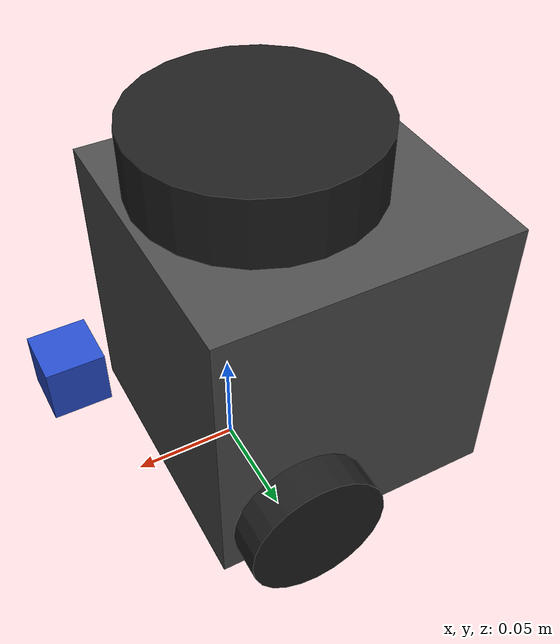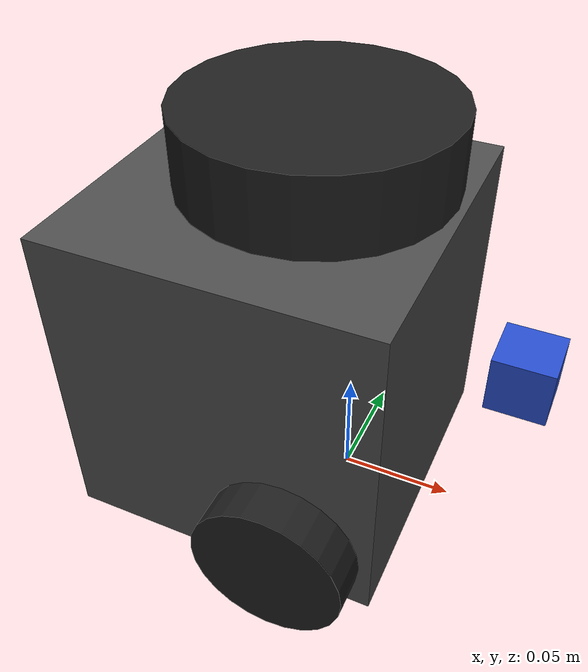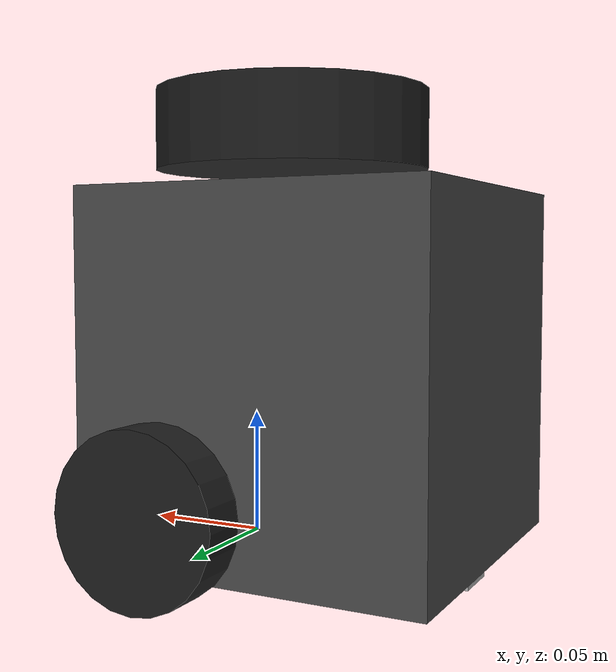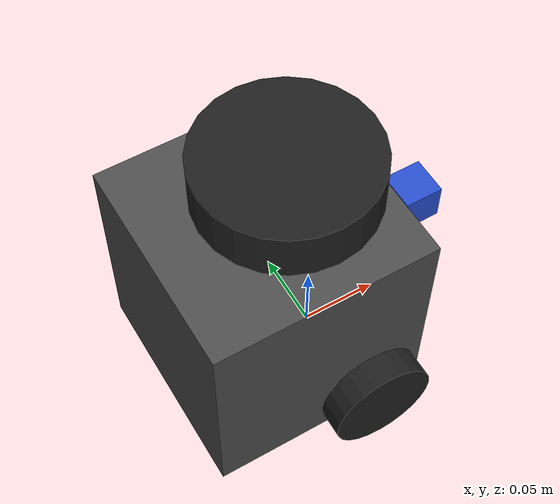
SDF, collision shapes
<?xml version="1.0" ?>
<sdf version="1.6">
  <model name="turtlebot3_burger_with_camera">

    <link name="base_footprint"/>

    <link name="base_link">
      <inertial>
        <pose>0 0 0 0 0 0</pose>
        <mass>8.2573504e-01</mass>
        <inertia>
          <ixx>2.2124416e-03</ixx>
          <ixy>-1.2294101e-05</ixy>
          <ixz>3.4938785e-05</ixz>
          <iyy>2.1193702e-03</iyy>
          <iyz>-5.0120904e-06</iyz>
          <izz>2.0064271e-03</izz>
        </inertia>
      </inertial>

      <collision name="base_collision">
        <pose>-0.032 0 0.070 0 0 0</pose>
        <geometry>
          <box>
            <size>0.140 0.140 0.143</size>
          </box>
        </geometry>
      </collision>

      <visual name="base_visual">
        <pose>-0.032 0 0.0 0 0 0</pose>
        <geometry>
          <mesh>
            <uri>package://turtlebot3_gazebo/models/turtlebot3_common/meshes/bases/burger_base.stl</uri>
            <scale>0.001 0.001 0.001</scale>
          </mesh>
        </geometry>
        <material>
          <script>
            <name>Gazebo/DarkGrey</name>
            <uri>file://media/materials/scripts/gazebo.material</uri>
          </script>
        </material>
      </visual>
    </link>

    <joint name="base_joint" type="fixed">
      <parent>base_footprint</parent>
      <child>base_link</child>
      <pose>0.0 0.0 0.010 0 0 0</pose>
    </joint>

    <link name="wheel_left_link">
      <pose>0.0 0.08 0.023 -1.57 0 0</pose>
      <inertial>
        <pose>0 0 0 0 0 0</pose>
        <mass>2.8498940e-02</mass>
        <inertia>
          <ixx>1.1175580e-05</ixx>
          <ixy>-4.2369783e-11</ixy>
          <ixz>-5.9381719e-09</ixz>
          <iyy>1.1192413e-05</iyy>
          <iyz>-1.4400107e-11</iyz>
          <izz>2.0712558e-05</izz>
        </inertia>
      </inertial>

      <collision name="wheel_left_collision">
        <pose>0 0 0 0 0 0</pose>
        <geometry>
          <cylinder>
            <radius>0.033</radius>
            <length>0.018</length>
          </cylinder>
        </geometry>
      </collision>

      <visual name="wheel_left_visual">
        <pose>0 0 0 1.57 0 0</pose>
        <geometry>
          <mesh>
            <uri>package://turtlebot3_gazebo/models/turtlebot3_common/meshes/wheels/left_tire.stl</uri>
            <scale>0.001 0.001 0.001</scale>
          </mesh>
        </geometry>
        <material>
          <script>
            <name>Gazebo/FlatBlack</name>
            <uri>file://media/materials/scripts/gazebo.material</uri>
          </script>
        </material>
      </visual>
    </link>

    <joint name="wheel_left_joint" type="revolute">
      <parent>base_link</parent>
      <child>wheel_left_link</child>
      <axis>
        <xyz>0 0 1</xyz>
      </axis>
    </joint>

    <link name="wheel_right_link">
      <pose>0.0 -0.080 0.023 -1.57 0 0</pose>
      <inertial>
        <pose>0 0 0 0 0 0</pose>
        <mass>2.8498940e-02</mass>
        <inertia>
          <ixx>1.1175580e-05</ixx>
          <ixy>-4.2369783e-11</ixy>
          <ixz>-5.9381719e-09</ixz>
          <iyy>1.1192413e-05</iyy>
          <iyz>-1.4400107e-11</iyz>
          <izz>2.0712558e-05</izz>
        </inertia>
      </inertial>

      <collision name="wheel_right_collision">
        <pose>0 0 0 0 0 0</pose>
        <geometry>
          <cylinder>
            <radius>0.033</radius>
            <length>0.018</length>
          </cylinder>
        </geometry>
      </collision>

      <visual name="wheel_right_visual">
        <pose>0 0 0 1.57 0 0</pose>
        <geometry>
          <mesh>
            <uri>package://turtlebot3_gazebo/models/turtlebot3_common/meshes/wheels/right_tire.stl</uri>
            <scale>0.001 0.001 0.001</scale>
          </mesh>
        </geometry>
        <material>
          <script>
            <name>Gazebo/FlatBlack</name>
            <uri>file://media/materials/scripts/gazebo.material</uri>
          </script>
        </material>
      </visual>
    </link>

    <joint name="wheel_right_joint" type="revolute">
      <parent>base_link</parent>
      <child>wheel_right_link</child>
      <axis>
        <xyz>0 0 1</xyz>
      </axis>
    </joint>

    <link name="caster_back_link">
      <pose>-0.081 0 -0.004 -1.57 0 0</pose>
      <inertial>
        <pose>0 0 0 0 0 0</pose>
        <mass>0.005</mass>
        <inertia>
          <ixx>0.001</ixx>
          <ixy>0.0</ixy>
          <ixz>0.0</ixz>
          <iyy>0.001</iyy>
          <iyz>0.0</iyz>
          <izz>0.001</izz>
        </inertia>
      </inertial>

      <collision name="caster_back_collision">
        <pose>0 0.001 0 0 0 0</pose>
        <geometry>
          <box>
            <size>0.030 0.009 0.020</size>
          </box>
        </geometry>
      </collision>
    </link>

    <joint name="caster_back_joint" type="fixed">
      <parent>base_link</parent>
      <child>caster_back_link</child>
    </joint>

    <link name="imu_link">
      <pose>-0.032 0 0.068 0 0 0</pose>
    </link>

    <joint name="imu_joint" type="fixed">
      <parent>base_link</parent>
      <child>imu_link</child>
    </joint>

    <link name="base_scan">
      <pose>-0.032 0 0.172 0 0 0</pose>
      <inertial>
        <pose>0 0 0 0 0 0</pose>
        <mass>0.114</mass>
        <inertia>
          <ixx>0.001</ixx>
          <ixy>0.0</ixy>
          <ixz>0.0</ixz>
          <iyy>0.001</iyy>
          <iyz>0.0</iyz>
          <izz>0.001</izz>
        </inertia>
      </inertial>

      <collision name="lidar_sensor_collision">
        <pose>0.015 0 -0.0065 0 0 0</pose>
        <geometry>
          <cylinder>
            <radius>0.055</radius>
            <length>0.0315</length>
          </cylinder>
        </geometry>
      </collision>

      <visual name="lidar_sensor_visual">
        <pose>0 0 0.0 0 0 0</pose>
        <geometry>
          <mesh>
            <uri>package://turtlebot3_gazebo/models/turtlebot3_common/meshes/sensors/lds.stl</uri>
            <scale>0.001 0.001 0.001</scale>
          </mesh>
        </geometry>
        <material>
          <script>
            <name>Gazebo/FlatBlack</name>
            <uri>file://media/materials/scripts/gazebo.material</uri>
          </script>
        </material>
      </visual>

      <sensor name="hls_lfcd_lds" type="ray">
        <pose>0 0 0 0 0 0</pose>
        <visualize>false</visualize>
        <update_rate>5</update_rate>
        <ray>
          <scan>
            <horizontal>
              <samples>360</samples>
              <resolution>1</resolution>
              <min_angle>0.0</min_angle>
              <max_angle>6.28319</max_angle>
            </horizontal>
          </scan>
          <range>
            <min>0.120</min>
            <max>3.5</max>
            <resolution>0.015</resolution>
          </range>
          <noise>
            <type>gaussian</type>
            <mean>0.0</mean>
            <stddev>0.01</stddev>
          </noise>
        </ray>
        <plugin name="gazebo_ros_lds_lfcd_controller" filename="libgazebo_ros_ray_sensor.so">
          <ros>
            <remapping>~/out:=scan</remapping>
          </ros>
          <output_type>sensor_msgs/LaserScan</output_type>
          <frame_name>base_scan</frame_name>
        </plugin>
      </sensor>
    </link>

    <joint name="scan_joint" type="fixed">
      <parent>base_link</parent>
      <child>base_scan</child>
    </joint>

    <!-- Camera link -->
    <link name="camera_link">
      <pose>0.073 0 0.084 0 0 0</pose>
      <inertial>
        <pose>0 0 0 0 0 0</pose>
        <mass>0.035</mass>
        <inertia>
          <ixx>0.001</ixx>
          <ixy>0.0</ixy>
          <ixz>0.0</ixz>
          <iyy>0.001</iyy>
          <iyz>0.0</iyz>
          <izz>0.001</izz>
        </inertia>
      </inertial>

      <collision name="camera_collision">
        <pose>0 0 0 0 0 0</pose>
        <geometry>
          <box>
            <size>0.025 0.025 0.025</size>
          </box>
        </geometry>
      </collision>

      <visual name="camera_visual">
        <pose>0 0 0 0 0 0</pose>
        <geometry>
          <box>
            <size>0.025 0.025 0.025</size>
          </box>
        </geometry>
        <material>
          <script>
            <name>Gazebo/Blue</name>
            <uri>file://media/materials/scripts/gazebo.material</uri>
          </script>
        </material>
      </visual>

      <!-- Camera sensor -->
      <sensor name="camera" type="camera">
        <pose>0 0 0 0 0 0</pose>
        <camera>
          <horizontal_fov>1.0472</horizontal_fov>
          <image>
            <width>640</width>
            <height>480</height>
            <format>R8G8B8</format>
          </image>
          <clip>
            <near>0.02</near>
            <far>300</far>
          </clip>
          <noise>
            <type>gaussian</type>
            <mean>0.0</mean>
            <stddev>0.007</stddev>
          </noise>
        </camera>
        <always_on>1</always_on>
        <update_rate>30</update_rate>
        <visualize>true</visualize>
        <plugin name="camera_controller" filename="libgazebo_ros_camera.so">
          <ros>
            <remapping>image_raw:=/camera/image_raw</remapping>
            <remapping>camera_info:=/camera/camera_info</remapping>
          </ros>
          <camera_name>camera</camera_name>
          <frame_name>camera_optical_frame</frame_name>
          <hack_baseline>0.07</hack_baseline>
        </plugin>
      </sensor>
    </link>

    <joint name="camera_joint" type="fixed">
      <parent>base_link</parent>
      <child>camera_link</child>
    </joint>

    <!-- Camera optical frame -->
    <link name="camera_optical_frame">
      <pose>0 0 0 -1.5708 0 -1.5708</pose>
    </link>

    <joint name="camera_optical_joint" type="fixed">
      <parent>camera_link</parent>
      <child>camera_optical_frame</child>
    </joint>

    <!-- Differential drive plugin -->
    <plugin name="turtlebot3_diff_drive" filename="libgazebo_ros_diff_drive.so">
      <ros>
        <remapping>cmd_vel:=cmd_vel</remapping>
        <remapping>odom:=odom</remapping>
      </ros>

      <update_rate>30</update_rate>

      <!-- wheels -->
      <left_joint>wheel_left_joint</left_joint>
      <right_joint>wheel_right_joint</right_joint>

      <!-- kinematics -->
      <wheel_separation>0.160</wheel_separation>
      <wheel_diameter>0.066</wheel_diameter>

      <!-- limits -->
      <max_wheel_torque>20</max_wheel_torque>
      <max_wheel_acceleration>1.0</max_wheel_acceleration>

      <!-- output -->
      <publish_odom>true</publish_odom>
      <publish_odom_tf>true</publish_odom_tf>
      <publish_wheel_tf>false</publish_wheel_tf>

      <odometry_frame>odom</odometry_frame>
      <robot_base_frame>base_footprint</robot_base_frame>
    </plugin>

    <!-- IMU plugin -->
    <plugin name="turtlebot3_imu" filename="libgazebo_ros_imu_sensor.so">
      <ros>
        <remapping>~/out:=imu</remapping>
      </ros>
      <body_name>imu_link</body_name>
      <update_rate>200</update_rate>
      <gaussian_noise>0.0</gaussian_noise>
      <xyz_offset>0 0 0</xyz_offset>
      <rpy_offset>0 0 0</rpy_offset>
      <frame_name>imu_link</frame_name>
      <initial_orientation_as_reference>false</initial_orientation_as_reference>
    </plugin>

    <!-- Joint state publisher -->
    <plugin name="turtlebot3_joint_state" filename="libgazebo_ros_joint_state_publisher.so">
      <ros>
        <remapping>~/out:=joint_states</remapping>
      </ros>
      <update_rate>250</update_rate>
      <joint_name>wheel_left_joint</joint_name>
      <joint_name>wheel_right_joint</joint_name>
    </plugin>

  </model>
</sdf>
